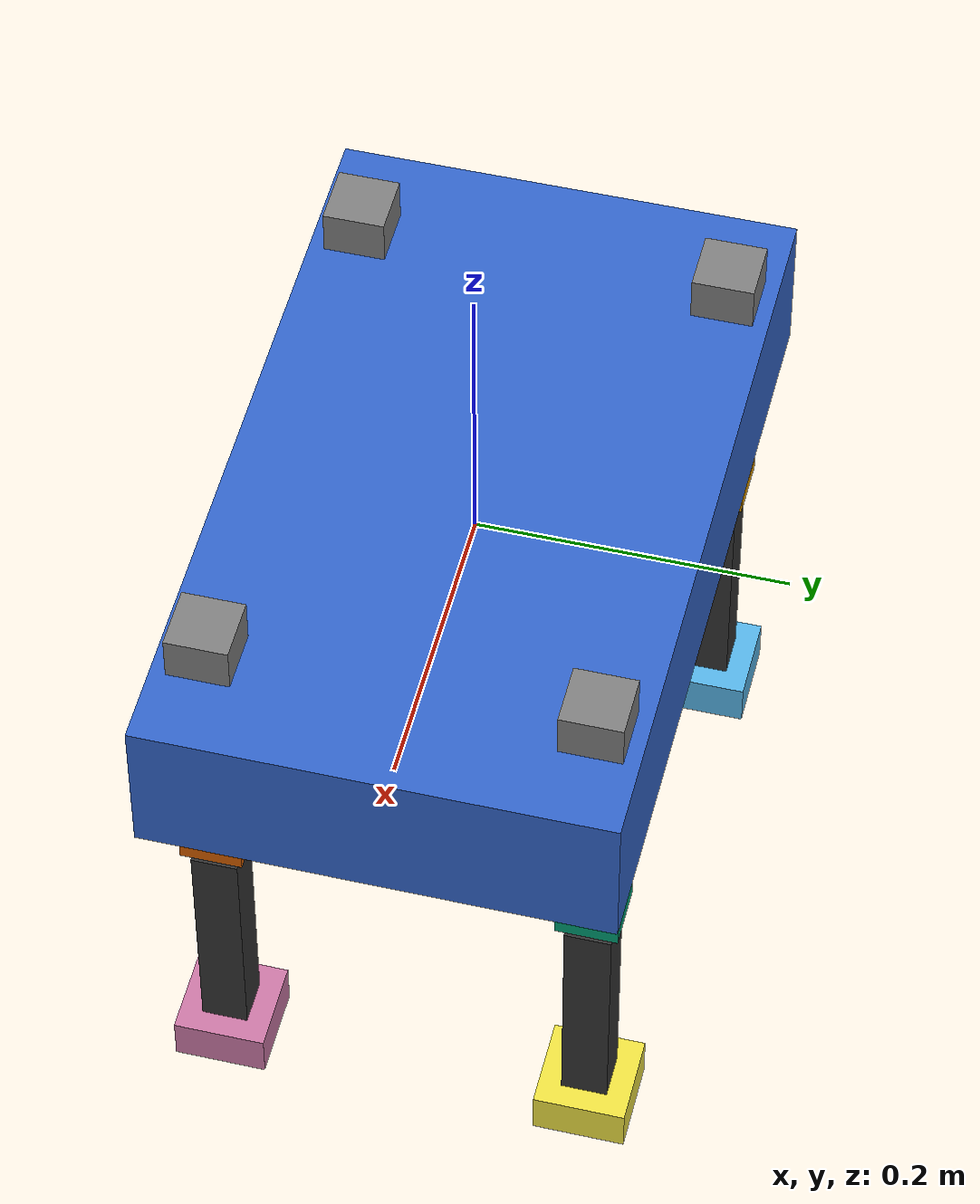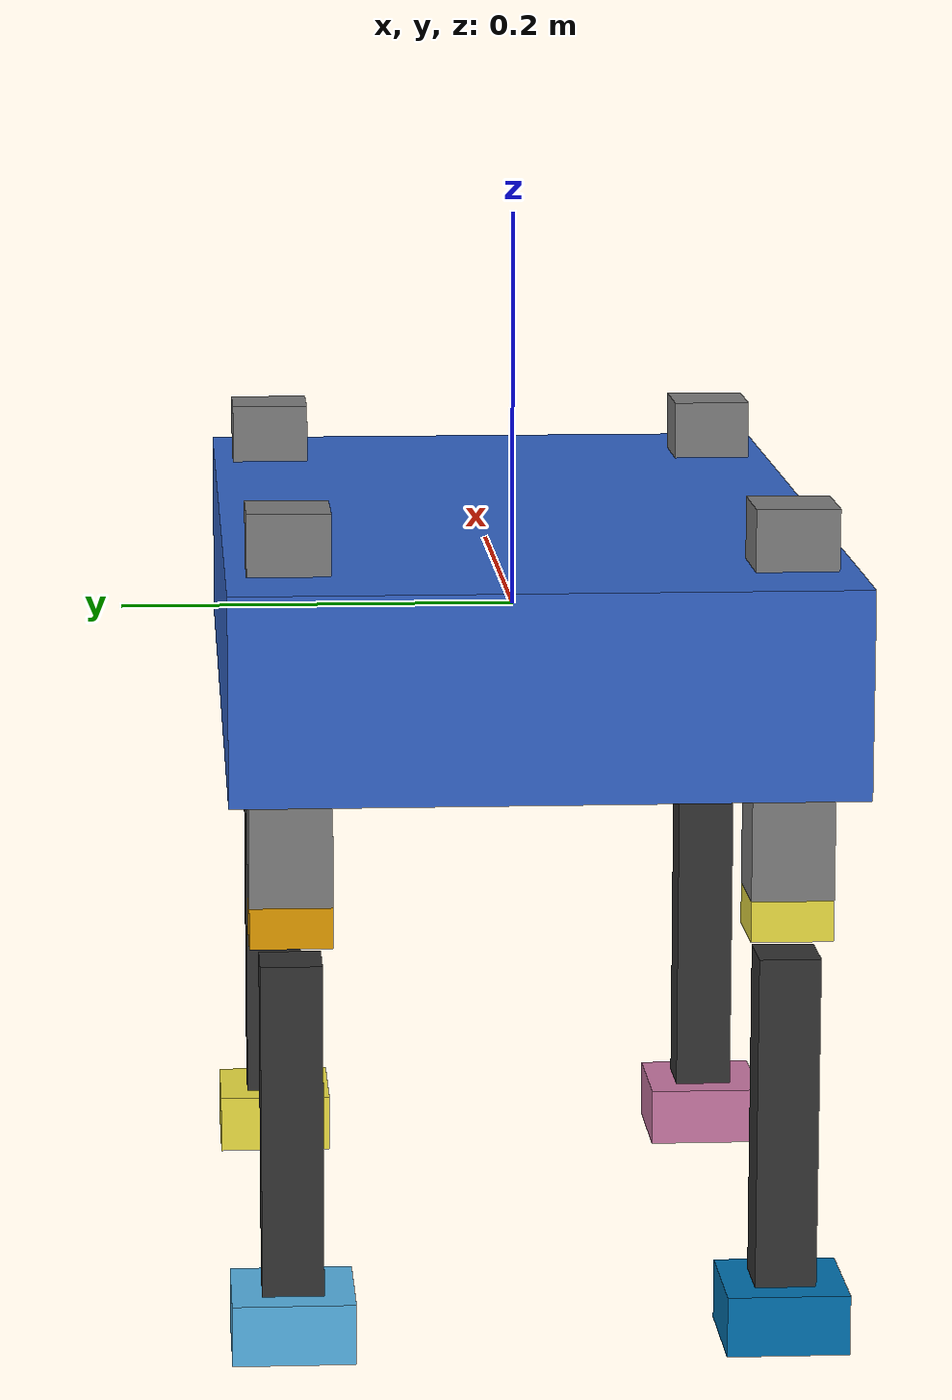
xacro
<?xml version="1.0"?>
<robot name="quad">
  <!-- 极简四足：4 腿 × 3 关节（hip/thigh/knee），只用于打通
       "cmd_vel → LocomotionController → /joint_commands → gz 关节" 链路。
       真模型（Go2）与真步态（CHAMP/RL）后续替换。 -->

  <link name="base_link">
    <inertial><mass value="3.0"/><inertia ixx="0.02" iyy="0.04" izz="0.05" ixy="0" ixz="0" iyz="0"/></inertial>
    <visual><geometry><box size="0.50 0.30 0.10"/></geometry><material name="blue"><color rgba="0.2 0.4 0.8 1"/></material></visual>
    <collision><geometry><box size="0.50 0.30 0.10"/></geometry></collision>
  </link>

    <!-- FL leg -->
    <link name="FL_hip">
      <inertial><mass value="0.3"/><inertia ixx="0.001" iyy="0.001" izz="0.001" ixy="0" ixz="0" iyz="0"/></inertial>
      <visual><geometry><box size="0.05 0.05 0.05"/></geometry><material name="grey"><color rgba="0.4 0.4 0.4 1"/></material></visual>
    </link>
    <joint name="FL_hip_joint" type="revolute">
      <parent link="base_link"/><child link="FL_hip"/>
      <origin xyz="0.18 0.12 0" rpy="0 0 0"/>
      <axis xyz="0 0 1"/>
      <limit lower="-0.6" upper="0.6" effort="20" velocity="5"/>
    </joint>

    <link name="FL_thigh">
      <inertial><mass value="0.5"/><inertia ixx="0.004" iyy="0.004" izz="0.0004" ixy="0" ixz="0" iyz="0"/></inertial>
      <visual><geometry><box size="0.04 0.04 0.20"/></geometry><material name="grey"><color rgba="0.5 0.5 0.5 1"/></material></visual>
      <visual><origin xyz="0 0 -0.10"/><geometry><box size="0.04 0.04 0.02"/></geometry></visual>
    </link>
    <joint name="FL_thigh_joint" type="revolute">
      <parent link="FL_hip"/><child link="FL_thigh"/>
      <origin xyz="0 0 -0.02" rpy="0 0 0"/>
      <axis xyz="0 1 0"/>
      <limit lower="-0.9" upper="0.9" effort="20" velocity="5"/>
    </joint>

    <link name="FL_shin">
      <inertial><mass value="0.25"/><inertia ixx="0.002" iyy="0.002" izz="0.0002" ixy="0" ixz="0" iyz="0"/></inertial>
      <visual><geometry><box size="0.03 0.03 0.18"/></geometry><material name="dark"><color rgba="0.2 0.2 0.2 1"/></material></visual>
      <visual><origin xyz="0 0 -0.09"/><geometry><box size="0.06 0.06 0.03"/></geometry></visual>
    </link>
    <joint name="FL_knee_joint" type="revolute">
      <parent link="FL_thigh"/><child link="FL_shin"/>
      <origin xyz="0 0 -0.21" rpy="0 0 0"/>
      <axis xyz="0 1 0"/>
      <limit lower="-1.6" upper="0.2" effort="20" velocity="5"/>
    </joint>

    <!-- FR leg -->
    <link name="FR_hip">
      <inertial><mass value="0.3"/><inertia ixx="0.001" iyy="0.001" izz="0.001" ixy="0" ixz="0" iyz="0"/></inertial>
      <visual><geometry><box size="0.05 0.05 0.05"/></geometry><material name="grey"><color rgba="0.4 0.4 0.4 1"/></material></visual>
    </link>
    <joint name="FR_hip_joint" type="revolute">
      <parent link="base_link"/><child link="FR_hip"/>
      <origin xyz="0.18 -0.12 0" rpy="0 0 0"/>
      <axis xyz="0 0 1"/>
      <limit lower="-0.6" upper="0.6" effort="20" velocity="5"/>
    </joint>

    <link name="FR_thigh">
      <inertial><mass value="0.5"/><inertia ixx="0.004" iyy="0.004" izz="0.0004" ixy="0" ixz="0" iyz="0"/></inertial>
      <visual><geometry><box size="0.04 0.04 0.20"/></geometry><material name="grey"><color rgba="0.5 0.5 0.5 1"/></material></visual>
      <visual><origin xyz="0 0 -0.10"/><geometry><box size="0.04 0.04 0.02"/></geometry></visual>
    </link>
    <joint name="FR_thigh_joint" type="revolute">
      <parent link="FR_hip"/><child link="FR_thigh"/>
      <origin xyz="0 0 -0.02" rpy="0 0 0"/>
      <axis xyz="0 1 0"/>
      <limit lower="-0.9" upper="0.9" effort="20" velocity="5"/>
    </joint>

    <link name="FR_shin">
      <inertial><mass value="0.25"/><inertia ixx="0.002" iyy="0.002" izz="0.0002" ixy="0" ixz="0" iyz="0"/></inertial>
      <visual><geometry><box size="0.03 0.03 0.18"/></geometry><material name="dark"><color rgba="0.2 0.2 0.2 1"/></material></visual>
      <visual><origin xyz="0 0 -0.09"/><geometry><box size="0.06 0.06 0.03"/></geometry></visual>
    </link>
    <joint name="FR_knee_joint" type="revolute">
      <parent link="FR_thigh"/><child link="FR_shin"/>
      <origin xyz="0 0 -0.21" rpy="0 0 0"/>
      <axis xyz="0 1 0"/>
      <limit lower="-1.6" upper="0.2" effort="20" velocity="5"/>
    </joint>

    <!-- RL leg -->
    <link name="RL_hip">
      <inertial><mass value="0.3"/><inertia ixx="0.001" iyy="0.001" izz="0.001" ixy="0" ixz="0" iyz="0"/></inertial>
      <visual><geometry><box size="0.05 0.05 0.05"/></geometry><material name="grey"><color rgba="0.4 0.4 0.4 1"/></material></visual>
    </link>
    <joint name="RL_hip_joint" type="revolute">
      <parent link="base_link"/><child link="RL_hip"/>
      <origin xyz="-0.18 0.12 0" rpy="0 0 0"/>
      <axis xyz="0 0 1"/>
      <limit lower="-0.6" upper="0.6" effort="20" velocity="5"/>
    </joint>

    <link name="RL_thigh">
      <inertial><mass value="0.5"/><inertia ixx="0.004" iyy="0.004" izz="0.0004" ixy="0" ixz="0" iyz="0"/></inertial>
      <visual><geometry><box size="0.04 0.04 0.20"/></geometry><material name="grey"><color rgba="0.5 0.5 0.5 1"/></material></visual>
      <visual><origin xyz="0 0 -0.10"/><geometry><box size="0.04 0.04 0.02"/></geometry></visual>
    </link>
    <joint name="RL_thigh_joint" type="revolute">
      <parent link="RL_hip"/><child link="RL_thigh"/>
      <origin xyz="0 0 -0.02" rpy="0 0 0"/>
      <axis xyz="0 1 0"/>
      <limit lower="-0.9" upper="0.9" effort="20" velocity="5"/>
    </joint>

    <link name="RL_shin">
      <inertial><mass value="0.25"/><inertia ixx="0.002" iyy="0.002" izz="0.0002" ixy="0" ixz="0" iyz="0"/></inertial>
      <visual><geometry><box size="0.03 0.03 0.18"/></geometry><material name="dark"><color rgba="0.2 0.2 0.2 1"/></material></visual>
      <visual><origin xyz="0 0 -0.09"/><geometry><box size="0.06 0.06 0.03"/></geometry></visual>
    </link>
    <joint name="RL_knee_joint" type="revolute">
      <parent link="RL_thigh"/><child link="RL_shin"/>
      <origin xyz="0 0 -0.21" rpy="0 0 0"/>
      <axis xyz="0 1 0"/>
      <limit lower="-1.6" upper="0.2" effort="20" velocity="5"/>
    </joint>

    <!-- RR leg -->
    <link name="RR_hip">
      <inertial><mass value="0.3"/><inertia ixx="0.001" iyy="0.001" izz="0.001" ixy="0" ixz="0" iyz="0"/></inertial>
      <visual><geometry><box size="0.05 0.05 0.05"/></geometry><material name="grey"><color rgba="0.4 0.4 0.4 1"/></material></visual>
    </link>
    <joint name="RR_hip_joint" type="revolute">
      <parent link="base_link"/><child link="RR_hip"/>
      <origin xyz="-0.18 -0.12 0" rpy="0 0 0"/>
      <axis xyz="0 0 1"/>
      <limit lower="-0.6" upper="0.6" effort="20" velocity="5"/>
    </joint>

    <link name="RR_thigh">
      <inertial><mass value="0.5"/><inertia ixx="0.004" iyy="0.004" izz="0.0004" ixy="0" ixz="0" iyz="0"/></inertial>
      <visual><geometry><box size="0.04 0.04 0.20"/></geometry><material name="grey"><color rgba="0.5 0.5 0.5 1"/></material></visual>
      <visual><origin xyz="0 0 -0.10"/><geometry><box size="0.04 0.04 0.02"/></geometry></visual>
    </link>
    <joint name="RR_thigh_joint" type="revolute">
      <parent link="RR_hip"/><child link="RR_thigh"/>
      <origin xyz="0 0 -0.02" rpy="0 0 0"/>
      <axis xyz="0 1 0"/>
      <limit lower="-0.9" upper="0.9" effort="20" velocity="5"/>
    </joint>

    <link name="RR_shin">
      <inertial><mass value="0.25"/><inertia ixx="0.002" iyy="0.002" izz="0.0002" ixy="0" ixz="0" iyz="0"/></inertial>
      <visual><geometry><box size="0.03 0.03 0.18"/></geometry><material name="dark"><color rgba="0.2 0.2 0.2 1"/></material></visual>
      <visual><origin xyz="0 0 -0.09"/><geometry><box size="0.06 0.06 0.03"/></geometry></visual>
    </link>
    <joint name="RR_knee_joint" type="revolute">
      <parent link="RR_thigh"/><child link="RR_shin"/>
      <origin xyz="0 0 -0.21" rpy="0 0 0"/>
      <axis xyz="0 1 0"/>
      <limit lower="-1.6" upper="0.2" effort="20" velocity="5"/>
    </joint>

  <gazebo>
    <plugin filename="gz-sim-joint-state-publisher-system"
            name="gz::sim::systems::JointStatePublisher">
      <topic>joint_states</topic>
    </plugin>
  </gazebo>
  <gazebo>
    <plugin filename="gz-sim-joint-position-controller-system"
            name="gz::sim::systems::JointPositionController">
      <joint_name>FL_hip_joint</joint_name>
      <topic>/model/quad/joint/FL_hip/cmd_pos</topic>
    </plugin>
    <plugin filename="gz-sim-joint-position-controller-system"
            name="gz::sim::systems::JointPositionController">
      <joint_name>FL_thigh_joint</joint_name>
      <topic>/model/quad/joint/FL_thigh/cmd_pos</topic>
    </plugin>
    <plugin filename="gz-sim-joint-position-controller-system"
            name="gz::sim::systems::JointPositionController">
      <joint_name>FL_knee_joint</joint_name>
      <topic>/model/quad/joint/FL_calf/cmd_pos</topic>
    </plugin>
    <plugin filename="gz-sim-joint-position-controller-system"
            name="gz::sim::systems::JointPositionController">
      <joint_name>FR_hip_joint</joint_name>
      <topic>/model/quad/joint/FR_hip/cmd_pos</topic>
    </plugin>
    <plugin filename="gz-sim-joint-position-controller-system"
            name="gz::sim::systems::JointPositionController">
      <joint_name>FR_thigh_joint</joint_name>
      <topic>/model/quad/joint/FR_thigh/cmd_pos</topic>
    </plugin>
    <plugin filename="gz-sim-joint-position-controller-system"
            name="gz::sim::systems::JointPositionController">
      <joint_name>FR_knee_joint</joint_name>
      <topic>/model/quad/joint/FR_calf/cmd_pos</topic>
    </plugin>
    <plugin filename="gz-sim-joint-position-controller-system"
            name="gz::sim::systems::JointPositionController">
      <joint_name>RL_hip_joint</joint_name>
      <topic>/model/quad/joint/RL_hip/cmd_pos</topic>
    </plugin>
    <plugin filename="gz-sim-joint-position-controller-system"
            name="gz::sim::systems::JointPositionController">
      <joint_name>RL_thigh_joint</joint_name>
      <topic>/model/quad/joint/RL_thigh/cmd_pos</topic>
    </plugin>
    <plugin filename="gz-sim-joint-position-controller-system"
            name="gz::sim::systems::JointPositionController">
      <joint_name>RL_knee_joint</joint_name>
      <topic>/model/quad/joint/RL_calf/cmd_pos</topic>
    </plugin>
    <plugin filename="gz-sim-joint-position-controller-system"
            name="gz::sim::systems::JointPositionController">
      <joint_name>RR_hip_joint</joint_name>
      <topic>/model/quad/joint/RR_hip/cmd_pos</topic>
    </plugin>
    <plugin filename="gz-sim-joint-position-controller-system"
            name="gz::sim::systems::JointPositionController">
      <joint_name>RR_thigh_joint</joint_name>
      <topic>/model/quad/joint/RR_thigh/cmd_pos</topic>
    </plugin>
    <plugin filename="gz-sim-joint-position-controller-system"
            name="gz::sim::systems::JointPositionController">
      <joint_name>RR_knee_joint</joint_name>
      <topic>/model/quad/joint/RR_calf/cmd_pos</topic>
    </plugin>
  </gazebo>
</robot>
